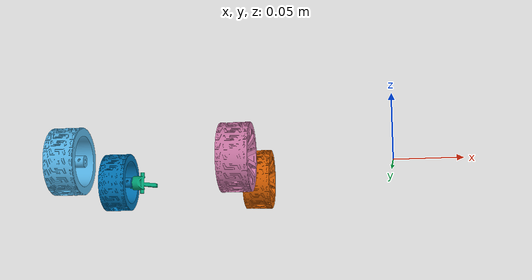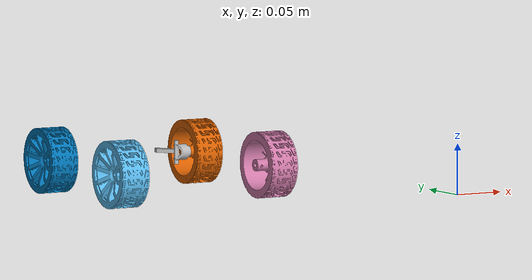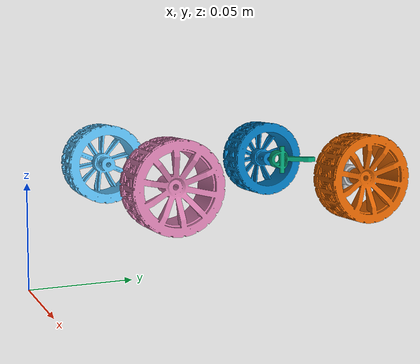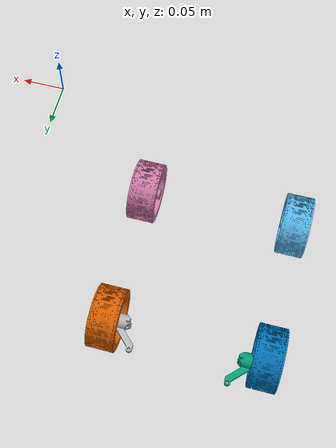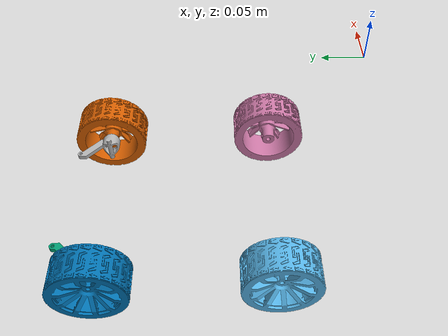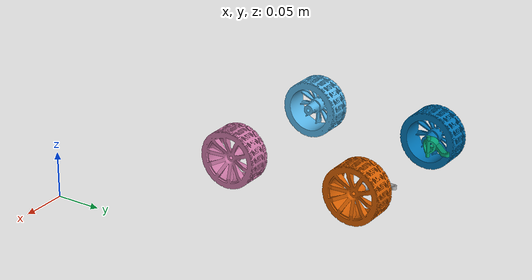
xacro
<?xml version='1.0' encoding='utf-8'?>
<robot name="Jetracer">
    <link name="Base_link">
        <inertial>
            <origin xyz="-0.2188431446735764 0.21801110433804433 0.042341304497060785" rpy="0.0 0.0 0.0" />
            <mass value="1.176913520449639" />
            <inertia ixx="0.00471474301552666" iyy="0.001726030052517934" izz="0.004958600022427171" ixy="2.26448138782902e-05" iyz="0.00034033398720116436" ixz="-6.326755186562055e-05" />
        </inertial>
        <visual name="Base_link_visual">
            <origin xyz="0.0 0.0 0.0" rpy="0.0 0.0 0.0" />
            <geometry>
                <mesh filename="meshes/Base_link.stl" scale="0.001 0.001 0.001" />
            </geometry>
        </visual>
        <collision name="Base_link_collision">
            <origin xyz="0.0 0.0 0.0" rpy="0.0 0.0 0.0" />
            <geometry>
                <mesh filename="meshes/Base_link.stl" scale="0.001 0.001 0.001" />
            </geometry>
        </collision>
    </link>
    <link name="Back_left_wheel_link">
        <inertial>
            <origin xyz="2.927331706214842e-05 0.0004286765389286629 -0.0022227221997959657" rpy="-3.944304526105059e-31 -0.0 0.0" />
            <mass value="0.05430175599038289" />
            <inertia ixx="1.8751279746962253e-05" iyy="1.877718038660288e-05" izz="3.0157649089595064e-05" ixy="2.1102116786955547e-09" iyz="2.4884449100952044e-08" ixz="1.7807953031446138e-09" />
        </inertial>
        <visual name="Back_left_wheel_link_visual">
            <origin xyz="-0.018075608707960746 0.05269847562646184 0.03526135333220688" rpy="-3.141592653589791 -5.80933483705982e-14 6.103732271394052e-15" />
            <geometry>
                <mesh filename="meshes/Back_left_wheel_link.stl" scale="0.001 0.001 0.001" />
            </geometry>
        </visual>
        <collision name="Back_left_wheel_link_collision">
            <origin xyz="-0.018075608707960746 0.05269847562646184 0.03526135333220688" rpy="-3.141592653589791 -5.80933483705982e-14 6.103732271394052e-15" />
            <geometry>
                <mesh filename="meshes/Back_left_wheel_link.stl" scale="0.001 0.001 0.001" />
            </geometry>
        </collision>
    </link>
    <link name="Control_left_wheel_link">
        <inertial>
            <origin xyz="-0.0033095632503630946 -0.0053147845774640335 0.012000000272433092" rpy="0.0 -0.0 5.4738221262687997e-48" />
            <mass value="0.0022633439186205465" />
            <inertia ixx="2.3321617796315383e-07" iyy="1.198225214393559e-07" izz="2.609982653238965e-07" ixy="7.588558546818485e-08" iyz="-5.316368380513131e-15" ixz="-6.531687210087995e-16" />
        </inertial>
        <visual name="Control_left_wheel_link_visual">
            <origin xyz="-0.010192779328301808 -0.007691863571393674 0.012000000000000552" rpy="-3.1415926535897927 1.5707963267948903 0" />
            <geometry>
                <mesh filename="meshes/Control_left_wheel_link.stl" scale="0.001 0.001 0.001" />
            </geometry>
        </visual>
        <collision name="Control_left_wheel_link_collision">
            <origin xyz="-0.010192779328301808 -0.007691863571393674 0.012000000000000552" rpy="-3.1415926535897927 1.5707963267948903 0" />
            <geometry>
                <mesh filename="meshes/Control_left_wheel_link.stl" scale="0.001 0.001 0.001" />
            </geometry>
        </collision>
    </link>
    <link name="Lidar_link">
        <inertial>
            <origin xyz="-0.028239426420145416 0.05091848444255814 6.461931578151336e-05" rpy="0.0 -0.0 5.4738221262687997e-48" />
            <mass value="0.08486622487588467" />
            <inertia ixx="7.212810687965451e-05" iyy="2.7441257171711007e-05" izz="8.077472261566903e-05" ixy="-7.125364902930981e-07" iyz="-1.283711324487551e-05" ixz="-3.680051842548928e-07" />
        </inertial>
        <visual name="Lidar_link_visual">
            <origin xyz="-0.02800000439999895 0.07349999800000169 -0.009199999999996109" rpy="-3.141592653589793 -7.909058347620162e-15 1.5707963267948941" />
            <geometry>
                <mesh filename="meshes/Lidar_link.stl" scale="0.001 0.001 0.001" />
            </geometry>
        </visual>
        <collision name="Lidar_link_collision">
            <origin xyz="-0.02800000439999895 0.07349999800000169 -0.009199999999996109" rpy="-3.141592653589793 -7.909058347620162e-15 1.5707963267948941" />
            <geometry>
                <mesh filename="meshes/Lidar_link.stl" scale="0.001 0.001 0.001" />
            </geometry>
        </collision>
    </link>
    <link name="Front_left_wheel_link">
        <inertial>
            <origin xyz="-0.01532972152810328 0.00042867296753681396 -2.9273400749354473e-05" rpy="1.7105694144590052e-49 -2.189528850507527e-47 0.0" />
            <mass value="0.05430175599038289" />
            <inertia ixx="3.0157649089595247e-05" iyy="1.8777180386603312e-05" izz="1.875127974696161e-05" ixy="2.4884449094961056e-08" iyz="-2.110211678844637e-09" ixz="-1.7807953411175636e-09" />
        </inertial>
        <visual name="Front_left_wheel_link_visual">
            <origin xyz="0.022154354003900503 0.05269847205506998 0.018075608624273445" rpy="-3.1415926535897922 1.57079632679489 0" />
            <geometry>
                <mesh filename="meshes/Front_left_wheel_link.stl" scale="0.001 0.001 0.001" />
            </geometry>
        </visual>
        <collision name="Front_left_wheel_link_collision">
            <origin xyz="0.022154354003900503 0.05269847205506998 0.018075608624273445" rpy="-3.1415926535897922 1.57079632679489 0" />
            <geometry>
                <mesh filename="meshes/Front_left_wheel_link.stl" scale="0.001 0.001 0.001" />
            </geometry>
        </collision>
    </link>
    <link name="Front_right_wheel_link">
        <inertial>
            <origin xyz="0.015329721528106495 -0.0004286801103229632 -2.9273400749625368e-05" rpy="0.0 -0.0 0.0" />
            <mass value="0.05430175599038288" />
            <inertia ixx="3.0157649089595003e-05" iyy="1.8777180386602716e-05" izz="1.875127974696226e-05" ixy="2.4884449095394737e-08" iyz="2.110211678790427e-09" ixz="1.7807953408871707e-09" />
        </inertial>
        <visual name="Front_right_wheel_link_visual">
            <origin xyz="-0.022154354003896773 -0.05269847919785653 0.01807560862427293" rpy="-5.855923348111018e-15 1.570796326794886 0" />
            <geometry>
                <mesh filename="meshes/Front_right_wheel_link.stl" scale="0.001 0.001 0.001" />
            </geometry>
        </visual>
        <collision name="Front_right_wheel_link_collision">
            <origin xyz="-0.022154354003896773 -0.05269847919785653 0.01807560862427293" rpy="-5.855923348111018e-15 1.570796326794886 0" />
            <geometry>
                <mesh filename="meshes/Front_right_wheel_link.stl" scale="0.001 0.001 0.001" />
            </geometry>
        </collision>
    </link>
    <link name="Back_right_wheel_link">
        <inertial>
            <origin xyz="-2.927348443597877e-05 0.00042867653892818324 0.0022227221998004864" rpy="3.944304526105059e-31 -0.0 0.0" />
            <mass value="0.054301755990382755" />
            <inertia ixx="1.8751279746962144e-05" iyy="1.877718038660288e-05" izz="3.0157649089595227e-05" ixy="-2.110211679820415e-09" iyz="-2.4884449095749382e-08" ixz="1.7807953431086937e-09" />
        </inertial>
        <visual name="Back_right_wheel_link_visual">
            <origin xyz="0.018075608540586076 0.05269847562646175 -0.035261353332204315" rpy="-1.1782268753097997e-15 -5.899896782659704e-14 -3.1415926535897873" />
            <geometry>
                <mesh filename="meshes/Back_right_wheel_link.stl" scale="0.001 0.001 0.001" />
            </geometry>
        </visual>
        <collision name="Back_right_wheel_link_collision">
            <origin xyz="0.018075608540586076 0.05269847562646175 -0.035261353332204315" rpy="-1.1782268753097997e-15 -5.899896782659704e-14 -3.1415926535897873" />
            <geometry>
                <mesh filename="meshes/Back_right_wheel_link.stl" scale="0.001 0.001 0.001" />
            </geometry>
        </collision>
    </link>
    <link name="Control_right_wheel_link">
        <inertial>
            <origin xyz="0.003309563250364711 -0.005314784577464096 0.011999999727568005" rpy="0.0 -0.0 5.4738221262687997e-48" />
            <mass value="0.0022633439186205465" />
            <inertia ixx="2.3321617796315383e-07" iyy="1.198225214393576e-07" izz="2.6099826532390326e-07" ixy="-7.588558546818485e-08" iyz="5.316368019691282e-15" ixz="-6.531691108253035e-16" />
        </inertial>
        <visual name="Control_right_wheel_link_visual">
            <origin xyz="0.010192779328303425 -0.007691863571393745 0.012000000000000451" rpy="3.1415926535897927 -1.5707963267948855 0" />
            <geometry>
                <mesh filename="meshes/Control_right_wheel_link.stl" scale="0.001 0.001 0.001" />
            </geometry>
        </visual>
        <collision name="Control_right_wheel_link_collision">
            <origin xyz="0.010192779328303425 -0.007691863571393745 0.012000000000000451" rpy="3.1415926535897927 -1.5707963267948855 0" />
            <geometry>
                <mesh filename="meshes/Control_right_wheel_link.stl" scale="0.001 0.001 0.001" />
            </geometry>
        </collision>
    </link>
    <joint name="Control_left_joint" type="continuous">
        <origin xyz="-0.28049647923282217 0.27461929244593714 0.035799999999999846" rpy="3.141592653589785 1.0191500421363112e-16 -7.546047120498976e-16" />
        <parent link="Base_link" />
        <child link="Control_left_wheel_link" />
        <axis xyz="2.465190328815662e-32 2.2204460492503136e-16 0.9999999999999999" />
    </joint>
    <joint name="Back_left_wheel_joint" type="continuous">
        <origin xyz="-0.2987964792328232 0.12461929244592986 0.025298850000000938" rpy="3.14159265358979 -1.5707963267948906 0" />
        <parent link="Base_link" />
        <child link="Back_left_wheel_link" />
        <axis xyz="0.0 -2.303712776096894e-15 1.0" />
    </joint>
    <joint name="Front_left_wheel_joint" type="continuous">
        <origin xyz="-0.005192780000000008 8.140000000018687e-06 0.012000000000000002" rpy="-2.2204460492503136e-16 -1.7256332301709638e-31 -6.783780320957819e-32" />
        <parent link="Control_left_wheel_link" />
        <child link="Front_left_wheel_link" />
        <axis xyz="0.9999999999999999 0.0 0.0" />
    </joint>
    <joint name="Back_right_wheel_joint" type="continuous">
        <origin xyz="-0.14219647923281456 0.12461929244592974 0.025298850000000928" rpy="-3.141592653589792 -1.5707963267948906 0" />
        <parent link="Base_link" />
        <child link="Back_right_wheel_link" />
        <axis xyz="0.0 2.1926904736343785e-15 1.0" />
    </joint>
    <joint name="Front_right_wheel_joint" type="continuous">
        <origin xyz="0.005192780000000008 8.140000000018687e-06 0.012000000000000002" rpy="-2.2204460492503136e-16 2.4651903288156605e-32 -6.783780320957824e-32" />
        <parent link="Control_right_wheel_link" />
        <child link="Front_right_wheel_link" />
        <axis xyz="-0.9999999999999999 0.0 0.0" />
    </joint>
    <joint name="Control_right_joint" type="continuous">
        <origin xyz="-0.1604964792328156 0.274619292445937 0.03579999999999983" rpy="3.141592653589785 1.0191500421363112e-16 -7.546047120498976e-16" />
        <parent link="Base_link" />
        <child link="Control_right_wheel_link" />
        <axis xyz="2.465190328815662e-32 2.2204460492503136e-16 0.9999999999999999" />
    </joint>
    <joint name="Lidar_joint" type="fixed">
        <origin xyz="-0.19249651923281735 0.2476192424459362 0.10997548000000107" rpy="3.141592653589785 1.0191500421363112e-16 -7.546047120498976e-16" />
        <parent link="Base_link" />
        <child link="Lidar_link" />
    </joint>
</robot>
